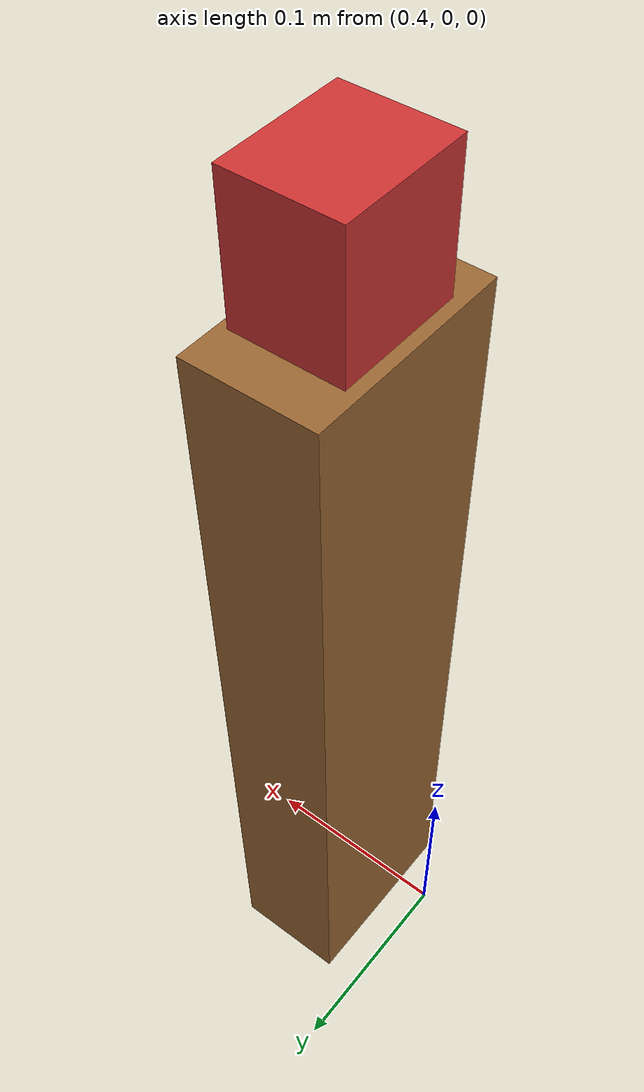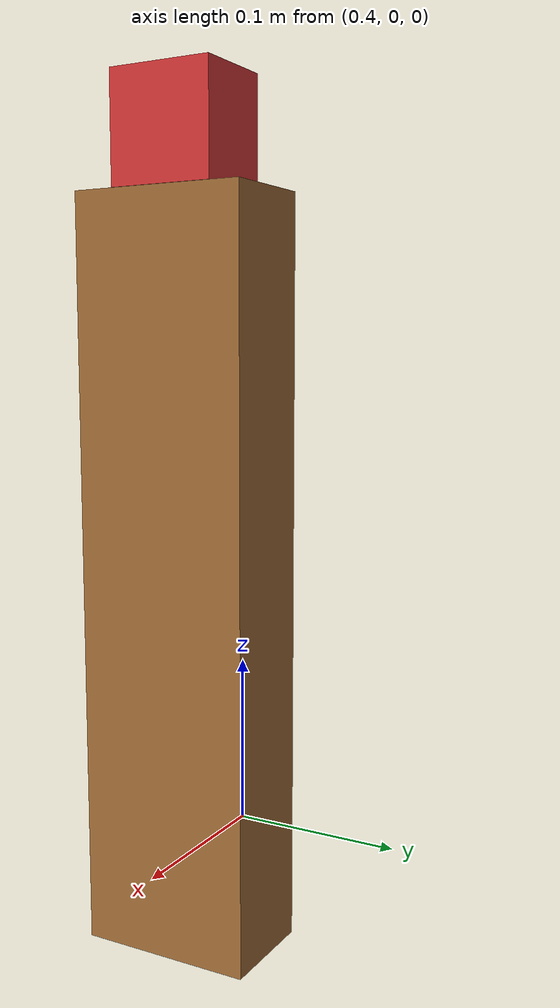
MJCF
<mujoco model="pedestal">
  <worldbody>
    <body name="pedestal" pos="0.46 0 0.16">
      <geom type="box" size="0.03 0.05 0.21" rgba="0.6 0.4 0.2 1"/>
    </body>
    <body name="box" pos="0.46 0 0.401">
      <freejoint/>
      <geom type="box" size="0.025 0.03 0.03" mass="0.01" rgba="0.8 0.2 0.2 1"/>
    </body>
  </worldbody>
</mujoco>
